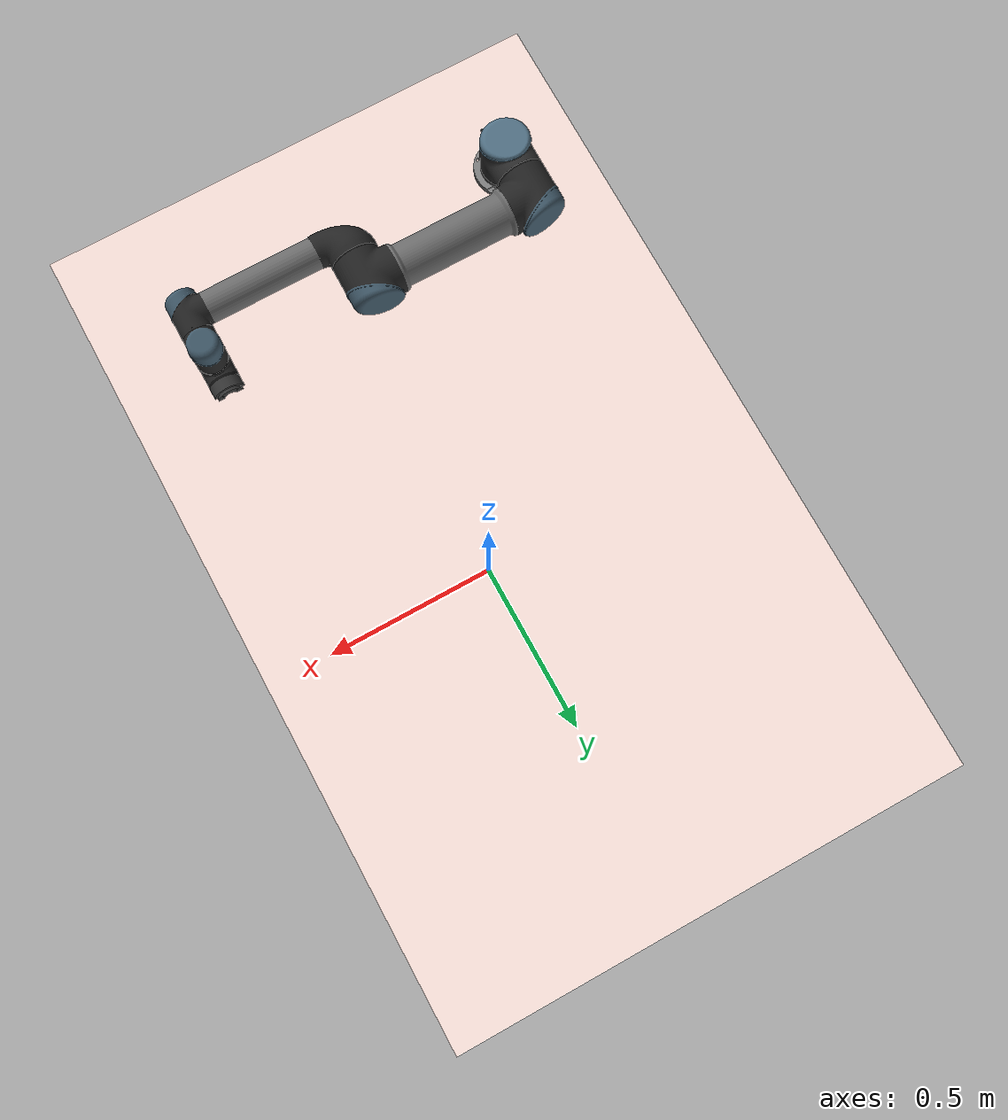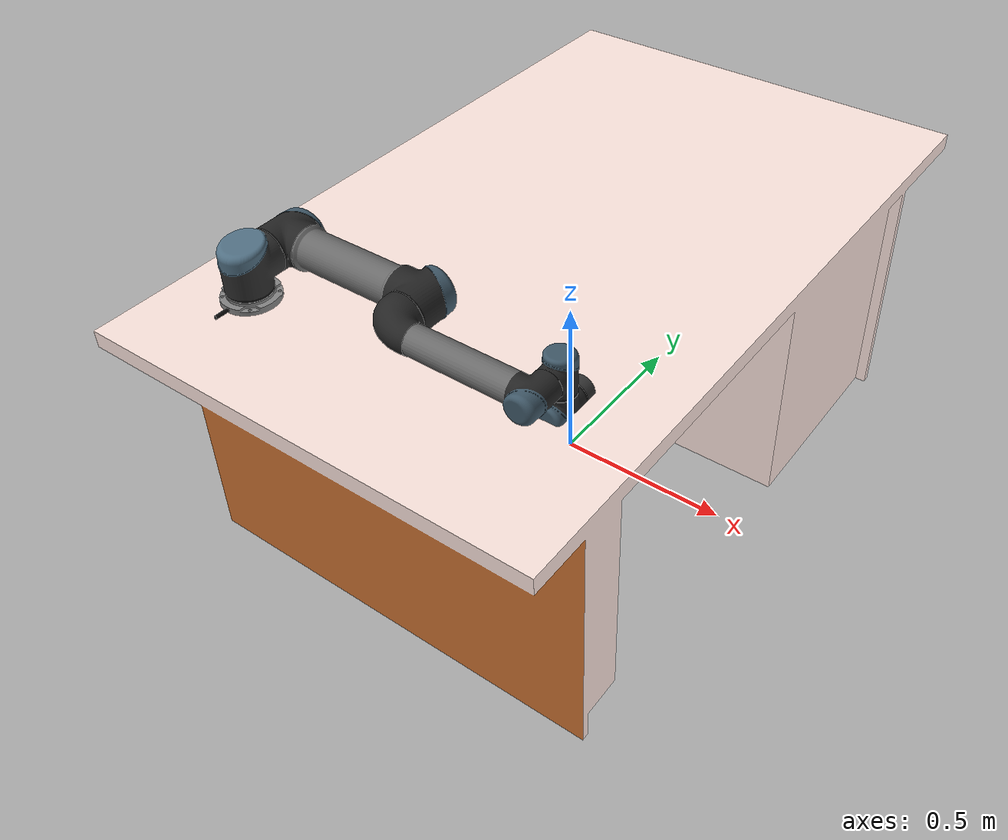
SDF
<?xml version="1.0"?>

<sdf version='1.6'>
  <model name='ur5_table_setup'>
    <link name='table'>
      <pose frame=''>0 0 0 0 -0 0</pose>
      <inertial>
        <pose frame=''>-0.425 -0.7 0.795 0 -0 0</pose>
        <mass>200</mass>
        <inertia>
          <ixx>0.443333</ixx>
          <ixy>0</ixy>
          <ixz>0</ixz>
          <iyy>0.443333</iyy>
          <iyz>0</iyz>
          <izz>0.72</izz>
        </inertia>
      </inertial>
      <collision name='table_collision'>
        <pose frame=''>0 0 0 1.57 -0 0</pose>
        <geometry>
          <mesh>
            <scale>1 1 1</scale>
              <uri>model://Table/meshes/Table_new.dae</uri>
          </mesh>
        </geometry>
      </collision>
      <collision name='table_fixed_joint_lump__ur5_base_link_collision_1'>
        <pose frame=''>-0.425 -0.7 0.795 0 -0 0</pose>
        <geometry>
          <mesh>
            <scale>1 1 1</scale>
            <uri>model://ur_description/meshes/ur5/collision/base.stl</uri>
          </mesh>
        </geometry>
      </collision>
      <visual name='table_visual'>
        <pose frame=''>0 0 0 1.57 -0 0</pose>
        <geometry>
          <mesh>
            <scale>1 1 1</scale>
              <uri>model://Table/meshes/Table_new.dae</uri>
          </mesh>
        </geometry>
      </visual>
      <visual name='table_fixed_joint_lump__ur5_base_link_visual_1'>
        <pose frame=''>-0.425 -0.7 0.795 0 -0 0</pose>
        <geometry>
          <mesh>
            <scale>1 1 1</scale>
            <uri>model://ur_description/meshes/ur5/visual/base.dae</uri>
          </mesh>
        </geometry>
      </visual>
    </link>
    <link name='ur5_shoulder_link'>
      <pose frame=''>-0.425 -0.7 0.884159 0 -0 0</pose>
      <inertial>
        <pose frame=''>0 0 0 0 -0 0</pose>
        <mass>3.7</mass>
        <inertia>
          <ixx>0.0102675</ixx>
          <ixy>0</ixy>
          <ixz>0</ixz>
          <iyy>0.0102675</iyy>
          <iyz>0</iyz>
          <izz>0.00666</izz>
        </inertia>
      </inertial>
      <collision name='ur5_shoulder_link_collision'>
        <pose frame=''>0 0 0 0 -0 0</pose>
        <geometry>
          <mesh>
            <scale>1 1 1</scale>
            <uri>model://ur_description/meshes/ur5/collision/shoulder.stl</uri>
          </mesh>
        </geometry>
        <surface>
          <contact>
            <ode/>
          </contact>
          <friction>
            <ode/>
          </friction>
        </surface>
      </collision>
      <visual name='ur5_shoulder_link_visual'>
        <pose frame=''>0 0 0 0 -0 0</pose>
        <geometry>
          <mesh>
            <scale>1 1 1</scale>
            <uri>model://ur_description/meshes/ur5/visual/shoulder.dae</uri>
          </mesh>
        </geometry>
        <material>
          <script>
            <uri>__default__</uri>
            <name>__default__</name>
          </script>
        </material>
      </visual>
      <gravity>1</gravity>
      <velocity_decay/>
      <self_collide>1</self_collide>
    </link>
    <joint name='ur5_shoulder_pan_joint' type='revolute'>
      <child>ur5_shoulder_link</child>
      <parent>table</parent>
      <axis>
        <xyz>0 0 1</xyz>
        <limit>
          <lower>-3.14159</lower>
          <upper>3.14159</upper>
          <effort>150</effort>
          <velocity>3.15</velocity>
        </limit>
        <dynamics>
          <damping>0</damping>
          <friction>0</friction>
          <spring_reference>0</spring_reference>
          <spring_stiffness>0</spring_stiffness>
        </dynamics>
        <use_parent_model_frame>1</use_parent_model_frame>
      </axis>
    </joint>
    <link name='ur5_upper_arm_link'>
      <pose frame=''>-0.425 -0.56415 0.884159 3.14159 1.57079 3.14159</pose>
      <inertial>
        <pose frame=''>0 0 0.28 0 -0 0</pose>
        <mass>8.393</mass>
        <inertia>
          <ixx>0.226891</ixx>
          <ixy>0</ixy>
          <ixz>0</ixz>
          <iyy>0.226891</iyy>
          <iyz>0</iyz>
          <izz>0.0151074</izz>
        </inertia>
      </inertial>
      <collision name='ur5_upper_arm_link_collision'>
        <pose frame=''>0 0 0 0 -0 0</pose>
        <geometry>
          <mesh>
            <scale>1 1 1</scale>
            <uri>model://ur_description/meshes/ur5/collision/upperarm.stl</uri>
          </mesh>
        </geometry>
        <surface>
          <contact>
            <ode/>
          </contact>
          <friction>
            <ode/>
          </friction>
        </surface>
      </collision>
      <visual name='ur5_upper_arm_link_visual'>
        <pose frame=''>0 0 0 0 -0 0</pose>
        <geometry>
          <mesh>
            <scale>1 1 1</scale>
            <uri>model://ur_description/meshes/ur5/visual/upperarm.dae</uri>
          </mesh>
        </geometry>
        <material>
          <script>
            <uri>__default__</uri>
            <name>__default__</name>
          </script>
        </material>
      </visual>
      <gravity>1</gravity>
      <velocity_decay/>
      <self_collide>1</self_collide>
    </link>
    <joint name='ur5_shoulder_lift_joint' type='revolute'>
      <child>ur5_upper_arm_link</child>
      <parent>ur5_shoulder_link</parent>
      <axis>
        <xyz>0 1 0</xyz>
        <limit>
          <lower>-3.14159</lower>
          <upper>3.14159</upper>
          <effort>150</effort>
          <velocity>3.15</velocity>
        </limit>
        <dynamics>
          <damping>0</damping>
          <friction>0</friction>
          <spring_reference>0</spring_reference>
          <spring_stiffness>0</spring_stiffness>
        </dynamics>
        <use_parent_model_frame>1</use_parent_model_frame>
      </axis>
    </joint>
    <link name='ur5_forearm_link'>
      <pose frame=''>0 -0.68385 0.884159 3.14159 1.57079 3.14159</pose>
      <inertial>
        <pose frame=''>0 0 0.196125 0 -0 0</pose>
        <mass>2.275</mass>
        <inertia>
          <ixx>0.0312168</ixx>
          <ixy>0</ixy>
          <ixz>0</ixz>
          <iyy>0.0312168</iyy>
          <iyz>0</iyz>
          <izz>0.004095</izz>
        </inertia>
      </inertial>
      <collision name='ur5_forearm_link_collision'>
        <pose frame=''>0 0 0 0 -0 0</pose>
        <geometry>
          <mesh>
            <scale>1 1 1</scale>
            <uri>model://ur_description/meshes/ur5/collision/forearm.stl</uri>
          </mesh>
        </geometry>
        <surface>
          <contact>
            <ode/>
          </contact>
          <friction>
            <ode/>
          </friction>
        </surface>
      </collision>
      <visual name='ur5_forearm_link_visual'>
        <pose frame=''>0 0 0 0 -0 0</pose>
        <geometry>
          <mesh>
            <scale>1 1 1</scale>
            <uri>model://ur_description/meshes/ur5/visual/forearm.dae</uri>
          </mesh>
        </geometry>
        <material>
          <script>
            <uri>__default__</uri>
            <name>__default__</name>
          </script>
        </material>
      </visual>
      <gravity>1</gravity>
      <velocity_decay/>
      <self_collide>1</self_collide>
    </link>
    <joint name='ur5_elbow_joint' type='revolute'>
      <child>ur5_forearm_link</child>
      <parent>ur5_upper_arm_link</parent>
      <axis>
        <xyz>0 1 0</xyz>
        <limit>
          <lower>-3.14159</lower>
          <upper>3.14159</upper>
          <effort>150</effort>
          <velocity>3.15</velocity>
        </limit>
        <dynamics>
          <damping>0</damping>
          <friction>0</friction>
          <spring_reference>0</spring_reference>
          <spring_stiffness>0</spring_stiffness>
        </dynamics>
        <use_parent_model_frame>1</use_parent_model_frame>
      </axis>
    </joint>
    <link name='ur5_wrist_1_link'>
      <pose frame=''>0.39225 -0.68385 0.884159 3.14159 0 3.14159</pose>
      <inertial>
        <pose frame=''>0 0.093 0 0 -0 0</pose>
        <mass>1.219</mass>
        <inertia>
          <ixx>0.0025599</ixx>
          <ixy>0</ixy>
          <ixz>0</ixz>
          <iyy>0.0025599</iyy>
          <iyz>0</iyz>
          <izz>0.0021942</izz>
        </inertia>
      </inertial>
      <collision name='ur5_wrist_1_link_collision'>
        <pose frame=''>0 0 0 0 -0 0</pose>
        <geometry>
          <mesh>
            <scale>1 1 1</scale>
            <uri>model://ur_description/meshes/ur5/collision/wrist1.stl</uri>
          </mesh>
        </geometry>
        <surface>
          <contact>
            <ode/>
          </contact>
          <friction>
            <ode/>
          </friction>
        </surface>
      </collision>
      <visual name='ur5_wrist_1_link_visual'>
        <pose frame=''>0 0 0 0 -0 0</pose>
        <geometry>
          <mesh>
            <scale>1 1 1</scale>
            <uri>model://ur_description/meshes/ur5/visual/wrist1.dae</uri>
          </mesh>
        </geometry>
        <material>
          <script>
            <uri>__default__</uri>
            <name>__default__</name>
          </script>
        </material>
      </visual>
      <gravity>1</gravity>
      <velocity_decay/>
      <self_collide>1</self_collide>
    </link>
    <joint name='ur5_wrist_1_joint' type='revolute'>
      <child>ur5_wrist_1_link</child>
      <parent>ur5_forearm_link</parent>
      <axis>
        <xyz>0 1 0</xyz>
        <limit>
          <lower>-3.14159</lower>
          <upper>3.14159</upper>
          <effort>28</effort>
          <velocity>3.2</velocity>
        </limit>
        <dynamics>
          <damping>0</damping>
          <friction>0</friction>
          <spring_reference>0</spring_reference>
          <spring_stiffness>0</spring_stiffness>
        </dynamics>
        <use_parent_model_frame>1</use_parent_model_frame>
      </axis>
    </joint>
    <link name='ur5_wrist_2_link'>
      <pose frame=''>0.39225 -0.59085 0.884159 3.14159 0 3.14159</pose>
      <inertial>
        <pose frame=''>0 0 0.09465 0 -0 0</pose>
        <mass>1.219</mass>
        <inertia>
          <ixx>0.0025599</ixx>
          <ixy>0</ixy>
          <ixz>0</ixz>
          <iyy>0.0025599</iyy>
          <iyz>0</iyz>
          <izz>0.0021942</izz>
        </inertia>
      </inertial>
      <collision name='ur5_wrist_2_link_collision'>
        <pose frame=''>0 0 0 0 -0 0</pose>
        <geometry>
          <mesh>
            <scale>1 1 1</scale>
            <uri>model://ur_description/meshes/ur5/collision/wrist2.stl</uri>
          </mesh>
        </geometry>
        <surface>
          <contact>
            <ode/>
          </contact>
          <friction>
            <ode/>
          </friction>
        </surface>
      </collision>
      <visual name='ur5_wrist_2_link_visual'>
        <pose frame=''>0 0 0 0 -0 0</pose>
        <geometry>
          <mesh>
            <scale>1 1 1</scale>
            <uri>model://ur_description/meshes/ur5/visual/wrist2.dae</uri>
          </mesh>
        </geometry>
        <material>
          <script>
            <uri>__default__</uri>
            <name>__default__</name>
          </script>
        </material>
      </visual>
      <gravity>1</gravity>
      <velocity_decay/>
      <self_collide>1</self_collide>
    </link>
    <joint name='ur5_wrist_2_joint' type='revolute'>
      <child>ur5_wrist_2_link</child>
      <parent>ur5_wrist_1_link</parent>
      <axis>
        <xyz>0 0 -1</xyz>
        <limit>
          <lower>-3.14159</lower>
          <upper>3.14159</upper>
          <effort>28</effort>
          <velocity>3.2</velocity>
        </limit>
        <dynamics>
          <damping>0</damping>
          <friction>0</friction>
          <spring_reference>0</spring_reference>
          <spring_stiffness>0</spring_stiffness>
        </dynamics>
        <use_parent_model_frame>1</use_parent_model_frame>
      </axis>
    </joint>
    <link name='ur5_wrist_3_link'>
      <pose frame=''>0.39225 -0.59085 0.789509 3.14159 0 3.14159</pose>
      <inertial>
        <pose frame=''>0 0.06505 0 1.5708 -0 0</pose>
        <mass>0.1879</mass>
        <inertia>
          <ixx>8.46959e-05</ixx>
          <ixy>0</ixy>
          <ixz>0</ixz>
          <iyy>8.46959e-05</iyy>
          <iyz>0</iyz>
          <izz>0.000132117</izz>
        </inertia>
      </inertial>
      <collision name='ur5_wrist_3_link_collision'>
        <pose frame=''>0 0 0 0 -0 0</pose>
        <geometry>
          <mesh>
            <scale>1 1 1</scale>
            <uri>model://ur_description/meshes/ur5/collision/wrist3.stl</uri>
          </mesh>
        </geometry>
        <surface>
          <contact>
            <ode/>
          </contact>
          <friction>
            <ode/>
          </friction>
        </surface>
      </collision>
      <collision name='ur5_wrist_3_link_fixed_joint_lump__ur5_ee_link_collision_1'>
        <pose frame=''>-0 0.0723 0 0 -0 1.5708</pose>
        <geometry>
          <box>
            <size>0.01 0.01 0.01</size>
          </box>
        </geometry>
        <surface>
          <contact>
            <ode/>
          </contact>
          <friction>
            <ode/>
          </friction>
        </surface>
      </collision>
      <visual name='ur5_wrist_3_link_visual'>
        <pose frame=''>0 0 0 0 -0 0</pose>
        <geometry>
          <mesh>
            <scale>1 1 1</scale>
            <uri>model://ur_description/meshes/ur5/visual/wrist3.dae</uri>
          </mesh>
        </geometry>
        <material>
          <script>
            <uri>__default__</uri>
            <name>__default__</name>
          </script>
        </material>
      </visual>
      <velocity_decay/>
      <gravity>1</gravity>
      <velocity_decay/>
      <self_collide>1</self_collide>
    </link>
    <joint name='ur5_wrist_3_joint' type='revolute'>
      <child>ur5_wrist_3_link</child>
      <parent>ur5_wrist_2_link</parent>
      <axis>
        <xyz>0 1 0</xyz>
        <limit>
          <lower>-3.14159</lower>
          <upper>3.14159</upper>
          <effort>28</effort>
          <velocity>3.2</velocity>
        </limit>
        <dynamics>
          <damping>0</damping>
          <friction>0</friction>
          <spring_reference>0</spring_reference>
          <spring_stiffness>0</spring_stiffness>
        </dynamics>
        <use_parent_model_frame>1</use_parent_model_frame>
      </axis>
    </joint>
  </model>
</sdf>
